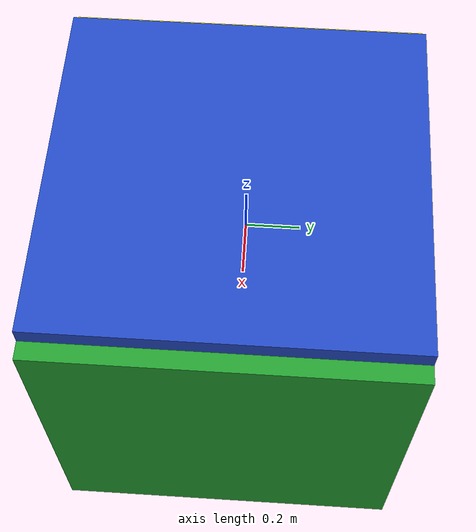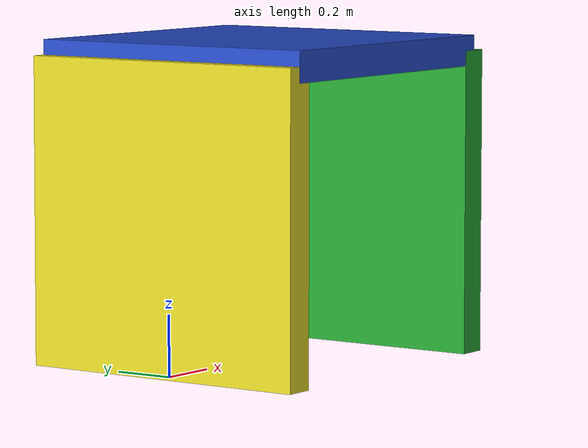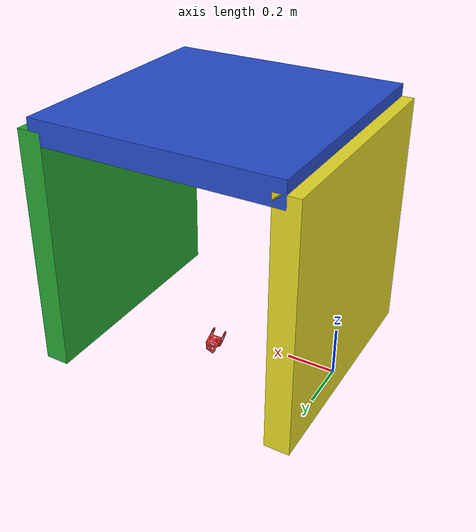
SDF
<sdf version="1.4">
  <model name="closed_chain">

    <link name="right_pad1">
      <self_collide>1</self_collide>
      <pose>0.5 0 0 0 0.0 0</pose>
      <collision name="right_pad1_collision">
        <geometry>
          <box>
            <size>1.0 1.0 0.1</size>
          </box>
        </geometry>
      </collision>
      <visual name="right_pad1_visual">
        <geometry>
          <mesh>
            <uri>model:///meshes/stl/link02_l_femoral.stl</uri>
          </mesh>
        </geometry>
        <material>
          <script>
            <uri>file://media/materials/scripts/gazebo.material</uri>
            <name>Gazebo/Red</name>
          </script>
        </material>
      </visual>
    </link>
    <!-- Joints are respect the CHILD in SDF -->
    <joint type="revolute" name="right_pad_joint1">
      <pose>-0.5 0 0 0 0 0</pose>
      <parent>right_pad1</parent>
      <child>right_pad2</child>
      <axis>
        <xyz>0 1 0</xyz>
      </axis>
    </joint>

    <link name="right_pad2">
      <self_collide>1</self_collide>
      <pose>1.0 0 0.5 0 -1.5707963268 0</pose>
      <collision name="right_pad2_collision">
        <geometry>
          <box>
            <size>1.0 1.0 0.1</size>
          </box>
        </geometry>
      </collision>
      <visual name="right_pad2_visual">
        <geometry>
          <box>
            <size>1.0 1.0 0.1</size>
          </box>
        </geometry>
        <material>
          <script>
            <uri>file://media/materials/scripts/gazebo.material</uri>
            <name>Gazebo/Green</name>
          </script>
        </material>
      </visual>
    </link>

    <joint type="revolute" name="right_pad_joint2">
      <pose>-0.5 0 0 0 0 0</pose>
      <parent>right_pad2</parent>
      <child>right_pad3</child>
      <axis>
        <xyz>0 1 0</xyz>
      </axis>
    </joint>

    <link name="right_pad3">
      <self_collide>1</self_collide>
      <pose>0.5 0 1 0 -3.1415926536 0</pose>
      <collision name="right_pad3_collision">
        <geometry>
          <box>
            <size>1.0 1.0 0.1</size>
          </box>
        </geometry>
      </collision>
      <visual name="right_pad3_visual">
        <geometry>
          <box>
            <size>1.0 1.0 0.1</size>
          </box>
        </geometry>
        <material>
          <script>
            <uri>file://media/materials/scripts/gazebo.material</uri>
            <name>Gazebo/Blue</name>
          </script>
        </material>
      </visual>
    </link>

    <joint type="revolute" name="right_pad_joint3">
      <pose>-0.5 0 0 0 0 0</pose>
      <parent>right_pad3</parent>
      <child>right_pad4</child>
      <axis>
        <xyz>0 1 0</xyz>
      </axis>
    </joint>

    <link name="right_pad4">
      <self_collide>1</self_collide>
      <pose>0 0 0.5 0 -4.7123889804 0</pose>
      <collision name="right_pad4_collision">
        <geometry>
          <box>
            <size>1.0 1.0 0.1</size>
          </box>
        </geometry>
      </collision>
      <visual name="right_pad4_visual">
        <geometry>
          <box>
            <size>1.0 1.0 0.1</size>
          </box>
        </geometry>
        <material>
          <script>
            <uri>file://media/materials/scripts/gazebo.material</uri>
            <name>Gazebo/Yellow</name>
          </script>
        </material>
      </visual>
    </link>

    <joint type="revolute" name="right_pad_joint4">
      <pose>-0.5 0 0 0 0 0</pose>
      <parent>right_pad4</parent>
      <child>right_pad1</child>
      <axis>
        <xyz>0 1 0</xyz>
      </axis>
    </joint>

  </model>
</sdf>
